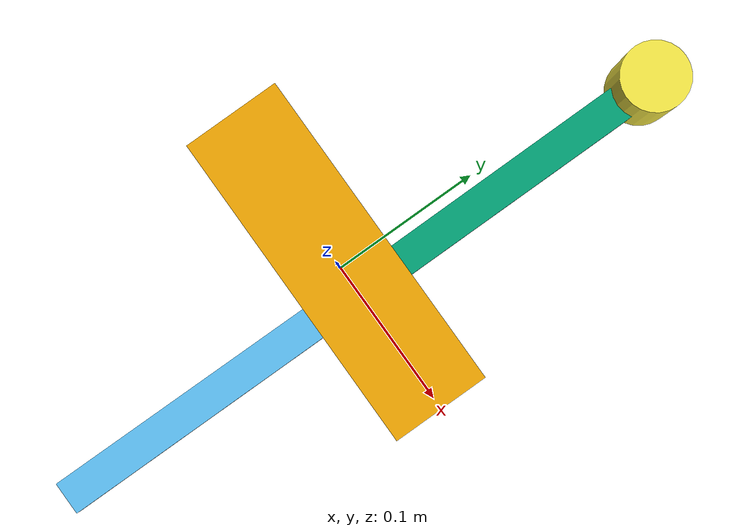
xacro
<?xml version="1.0"?>
<robot xmlns:xacro="http://wiki.ros.org/xacro" name="drone">

  <!-- BGN - Include -->
  <xacro:include filename="/server_ws/src/drone-model/urdf/robot_parameters.xacro" />
  <xacro:include filename="/server_ws/src/drone-model/urdf/links_joints.xacro" />
  <!-- END - Include -->

  <xacro:m_link_box name="${main_body}"
    origin_rpy="0 0 0" origin_xyz="0 0 0.05"
    mass="0.5"
    ixx="1.0" ixy="0" ixz="0"
    iyy="1.0" iyz="0"
    izz="1.0"
    size="0.2 0.06 0.10"
  />

  <xacro:m_link_box name="${arm_left}"
    origin_rpy="0 -0.1 -1.5707" origin_xyz="0.02 -0.1 0.02"
    mass="0.5"
    ixx="1.0" ixy="0" ixz="0"
    iyy="1.0" iyz="0"
    izz="1.0"
    size="0.2 0.02 0.02"
  />

  <xacro:m_link_box name="${arm_right}"
    origin_rpy="0 -0.1 1.5707" origin_xyz="0.02 0.1 0.02"
    mass="0.5"
    ixx="1.0" ixy="0" ixz="0"
    iyy="1.0" iyz="0"
    izz="1.0"
    size="0.2 0.02 0.02"
  />

  <xacro:m_link_cylinder name="${motor_right}"
    origin_rpy="0 0 0" origin_xyz="0 0 0.0"
    mass="0.0"
    ixx="0.0" ixy="0" ixz="0"
    iyy="0.0" iyz="0"
    izz="0.0"
    radius="0.02" length="0.05"
  />

  <joint name="link_${main_body}_${arm_right}" type="fixed">
    <parent link="${main_body}"/>
    <child link="${arm_right}"/>
    <origin xyz="0 0.0 0.05"/>
  </joint>

  <joint name="link_${main_body}_${arm_left}" type="fixed">
    <parent link="${main_body}"/>
    <child link="${arm_left}"/>
    <origin xyz="0 0.0 0.05"/>
  </joint>

  <xacro:m_joint name="${arm_right}__${motor_right}" type="revolute"
    axis_xyz="0 1 0"
    origin_rpy="0 0 0" origin_xyz="0.02 0.2 0.04"
    parent="${arm_right}" child="${motor_right}"
    limit_e="1000" limit_l="-0.5" limit_u="0.5" limit_v="0.5"
  />

</robot>

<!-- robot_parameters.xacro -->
<robot xmlns:xacro="http://www.ros.org/wiki/xacro">
  <xacro:property name="main_body" value="base_link" />
  <xacro:property name="arm_left" value="arm_left" />
  <xacro:property name="arm_right" value="arm_right" />
  <xacro:property name="motor_right" value="motor_right" />
  <xacro:property name="motor_left" value="motor_left" />
</robot>

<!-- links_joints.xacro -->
<robot xmlns:xacro="http://www.ros.org/wiki/xacro">

  <xacro:macro name="m_joint" params="name type axis_xyz origin_rpy origin_xyz parent child limit_e limit_l limit_u limit_v">
    <joint name="${name}" type="${type}">
      <axis xyz="${axis_xyz}" />
      <limit effort="${limit_e}" lower="${limit_l}" upper="${limit_u}" velocity="${limit_v}" />
      <origin rpy="${origin_rpy}" xyz="${origin_xyz}" />
      <parent link="${parent}" />
      <child link="${child}" />
      <dynamics damping="10.0" friction="10.0"/>
    </joint>

  </xacro:macro>

  <xacro:macro name="m_link_cylinder" params="name origin_xyz origin_rpy radius length mass ixx ixy ixz iyy iyz izz">
    <link name="${name}">
      <inertial>
        <mass value="${mass}" />
        <origin rpy="${origin_rpy}" xyz="${origin_xyz}" />
        <inertia ixx="${ixx}" ixy="${ixy}" ixz="${ixz}" iyy="${iyy}" iyz="${iyz}" izz="${izz}" />
      </inertial>
      <collision>
        <origin rpy="${origin_rpy}" xyz="${origin_xyz}" />
        <geometry>
          <cylinder radius="${radius}" length="${length}" />
        </geometry>
      </collision>
      <visual>
        <origin rpy="${origin_rpy}" xyz="${origin_xyz}" />
        <geometry>
          <cylinder radius="${radius}" length="${length}" />
        </geometry>
      </visual>
    </link>
  </xacro:macro>

  <xacro:macro name="m_link_box" params="name origin_xyz origin_rpy size mass ixx ixy ixz iyy iyz izz">
    <link name="${name}">
      <inertial>
        <mass value="${mass}" />
        <origin rpy="${origin_rpy}" xyz="${origin_xyz}" />
        <inertia ixx="${ixx}" ixy="${ixy}" ixz="${ixz}" iyy="${iyy}" iyz="${iyz}" izz="${izz}" />
      </inertial>
      <collision>
        <origin rpy="${origin_rpy}" xyz="${origin_xyz}" />
        <geometry>
          <box size="${size}" />
        </geometry>
      </collision>
      <visual>
        <origin rpy="${origin_rpy}" xyz="${origin_xyz}" />
        <geometry>
          <box size="${size}" />
        </geometry>
      </visual>
    </link>
  </xacro:macro>

  <xacro:macro name="m_link_mesh" params="name origin_xyz origin_rpy meshfile meshscale mass ixx ixy ixz iyy iyz izz">
    <link name="${name}">
      <inertial>
        <mass value="${mass}" />
        <origin rpy="${origin_rpy}" xyz="${origin_xyz}" />
        <inertia ixx="${ixx}" ixy="${ixy}" ixz="${ixz}" iyy="${iyy}" iyz="${iyz}" izz="${izz}" />
      </inertial>
      <collision>
        <origin rpy="${origin_rpy}" xyz="${origin_xyz}" />
        <geometry>
          <mesh filename="${meshfile}" scale="${meshscale}"/>
        </geometry>
      </collision>
      <visual>
        <origin rpy="${origin_rpy}" xyz="${origin_xyz}" />
        <geometry>
          <mesh filename="${meshfile}" scale="${meshscale}"/>
        </geometry>
        <material name="light_black"/>
      </visual>
    </link>
  </xacro:macro>

</robot>
